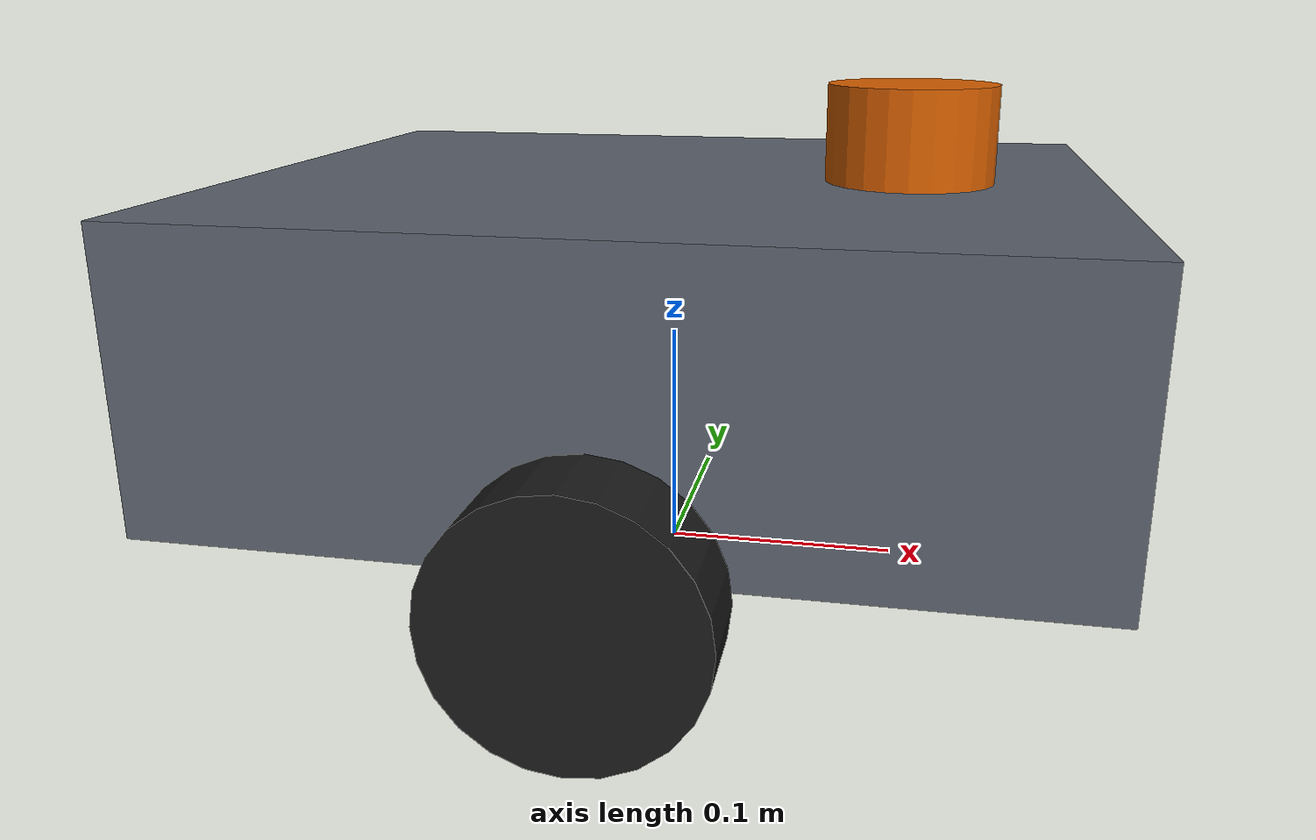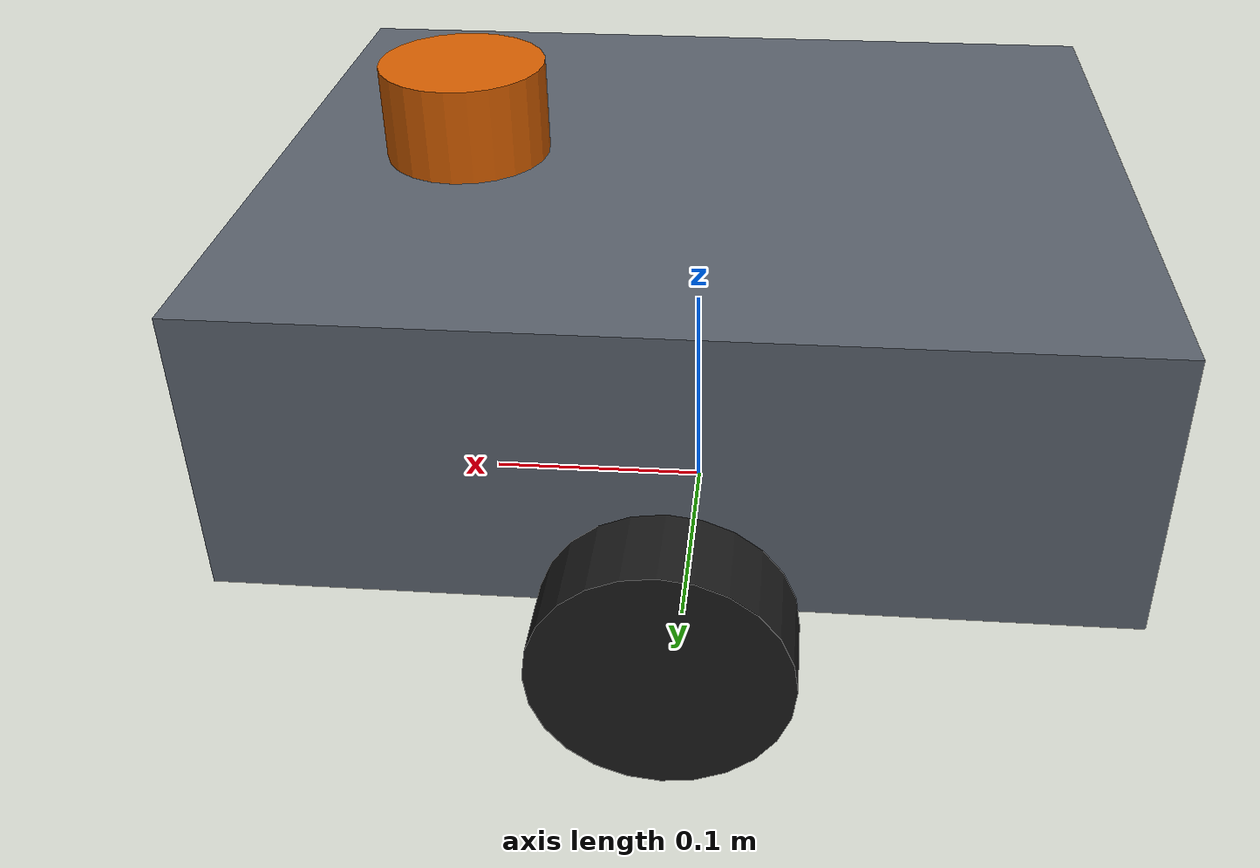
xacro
<?xml version="1.0"?>
<robot xmlns:xacro="http://www.ros.org/wiki/xacro" name="arc_bot">
  <xacro:include filename="$(find arc_description)/urdf/arc_bot.urdf.xacro"
                 tf_fault="parent"/>
</robot>

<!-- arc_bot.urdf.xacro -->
<robot xmlns:xacro="http://www.ros.org/wiki/xacro" name="arc_bot">

  <xacro:arg name="fault" default="none"/>
  <xacro:arg name="tf_fault" default="none"/>
  <xacro:property name="fault" value="$(arg fault)"/>
  <xacro:property name="tf_fault" value="$(arg tf_fault)"/>

  <xacro:property name="wheel_radius"     value="0.050"/>
  <xacro:property name="wheel_separation" value="0.350"/>
  <xacro:property name="wheel_width"      value="0.035"/>
  <xacro:property name="base_length"      value="0.360"/>
  <xacro:property name="base_width"       value="0.300"/>
  <xacro:property name="base_height"      value="0.120"/>
  <xacro:property name="base_mass"        value="5.0"/>
  <xacro:property name="wheel_mass"       value="0.4"/>
  <xacro:property name="caster_radius"    value="0.025"/>
  <xacro:property name="lidar_height"     value="0.115"/>

  <xacro:macro name="box_inertia" params="m x y z">
    <inertial>
      <mass value="${m}"/>
      <inertia ixx="${m*(y*y+z*z)/12}" iyy="${m*(x*x+z*z)/12}" izz="${m*(x*x+y*y)/12}"
               ixy="0" ixz="0" iyz="0"/>
    </inertial>
  </xacro:macro>

  <xacro:macro name="cylinder_inertia" params="m r h">
    <inertial>
      <mass value="${m}"/>
      <inertia ixx="${m*(3*r*r+h*h)/12}" iyy="${m*(3*r*r+h*h)/12}" izz="${m*r*r/2}"
               ixy="0" ixz="0" iyz="0"/>
    </inertial>
  </xacro:macro>

  <!-- base_footprint is the frame Nav2 and the TF tree are anchored to. It sits
       on the ground plane directly below base_link. -->
  <link name="base_footprint"/>

  <link name="base_link">
    <visual>
      <geometry><box size="${base_length} ${base_width} ${base_height}"/></geometry>
      <material name="arc_grey"><color rgba="0.35 0.38 0.42 1"/></material>
    </visual>
    <collision>
      <geometry><box size="${base_length} ${base_width} ${base_height}"/></geometry>
    </collision>
    <xacro:box_inertia m="${base_mass}" x="${base_length}" y="${base_width}" z="${base_height}"/>
  </link>

  <joint name="base_footprint_joint" type="fixed">
    <parent link="base_footprint"/>
    <child link="base_link"/>
    <origin xyz="0 0 ${wheel_radius + base_height/2}"/>
  </joint>

  <xacro:macro name="wheel" params="prefix reflect">
    <link name="${prefix}_wheel_link">
      <visual>
        <origin rpy="1.5707963 0 0"/>
        <geometry><cylinder radius="${wheel_radius}" length="${wheel_width}"/></geometry>
        <material name="arc_black"><color rgba="0.1 0.1 0.1 1"/></material>
      </visual>
      <collision>
        <origin rpy="1.5707963 0 0"/>
        <geometry><cylinder radius="${wheel_radius}" length="${wheel_width}"/></geometry>
      </collision>
      <xacro:cylinder_inertia m="${wheel_mass}" r="${wheel_radius}" h="${wheel_width}"/>
    </link>
    <joint name="${prefix}_wheel_joint" type="continuous">
      <parent link="base_link"/>
      <child link="${prefix}_wheel_link"/>
      <origin xyz="0 ${reflect * wheel_separation/2} ${-base_height/2}"/>
      <axis xyz="0 1 0"/>
      <dynamics damping="0.02" friction="0.001"/>
    </joint>
  </xacro:macro>

  <xacro:wheel prefix="left"  reflect="1"/>
  <xacro:wheel prefix="right" reflect="-1"/>

  <link name="caster_link">
    <visual><geometry><sphere radius="${caster_radius}"/></geometry></visual>
    <collision>
      <geometry><sphere radius="${caster_radius}"/></geometry>
      <surface><friction><ode><mu>0.0</mu><mu2>0.0</mu2></ode></friction></surface>
    </collision>
    <inertial>
      <mass value="0.1"/>
      <inertia ixx="1e-5" iyy="1e-5" izz="1e-5" ixy="0" ixz="0" iyz="0"/>
    </inertial>
  </link>
  <joint name="caster_joint" type="fixed">
    <parent link="base_link"/>
    <child link="caster_link"/>
    <origin xyz="${base_length/2 - 0.05} 0 ${-base_height/2 - wheel_radius + caster_radius}"/>
  </joint>

  <!-- Sensor frames. The laser frame_id must match the frame_id published in the
       LaserScan message or the costmap will silently receive nothing usable. -->
  <link name="laser_link">
    <visual><geometry><cylinder radius="0.035" length="0.04"/></geometry></visual>
    <collision><geometry><cylinder radius="0.035" length="0.04"/></geometry></collision>
    <inertial>
      <mass value="0.15"/>
      <inertia ixx="1e-4" iyy="1e-4" izz="1e-4" ixy="0" ixz="0" iyz="0"/>
    </inertial>
  </link>
  <xacro:unless value="${tf_fault == 'parent'}">
    <joint name="laser_joint" type="fixed">
      <parent link="base_link"/>
      <child link="laser_link"/>
      <origin xyz="0.10 0 ${base_height/2 + 0.02}"/>
    </joint>
  </xacro:unless>
  <xacro:if value="${tf_fault == 'parent'}">
    <!-- chassis_link does not exist. The result is two disconnected trees,
         which view_frames shows immediately and tf2_echo reports as a missing
         frame. Lab 2, Exercise 2.3. -->
    <joint name="laser_joint" type="fixed">
      <parent link="chassis_link"/>
      <child link="laser_link"/>
      <origin xyz="0.10 0 ${base_height/2 + 0.02}"/>
    </joint>
  </xacro:if>

  <link name="imu_link">
    <inertial>
      <mass value="0.05"/>
      <inertia ixx="1e-6" iyy="1e-6" izz="1e-6" ixy="0" ixz="0" iyz="0"/>
    </inertial>
  </link>
  <joint name="imu_joint" type="fixed">
    <parent link="base_link"/>
    <child link="imu_link"/>
    <origin xyz="0 0 0.02"/>
  </joint>

  <xacro:include filename="$(find arc_description)/urdf/arc_bot.ros2_control.xacro"/>
  <xacro:include filename="$(find arc_description)/urdf/arc_bot.gazebo.xacro"/>

</robot>
